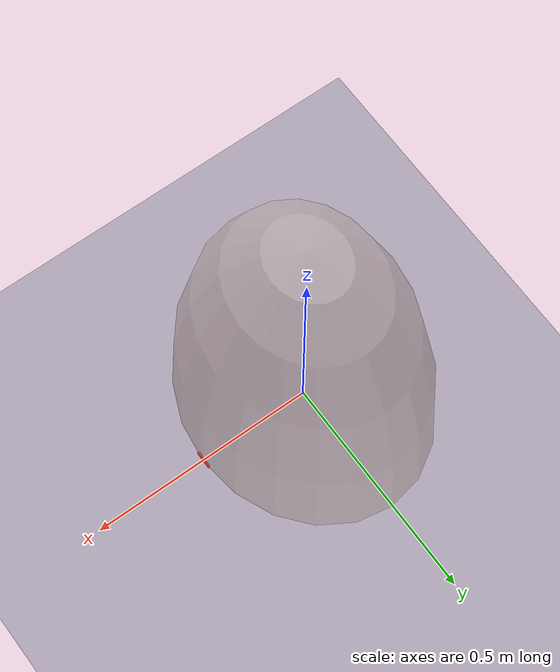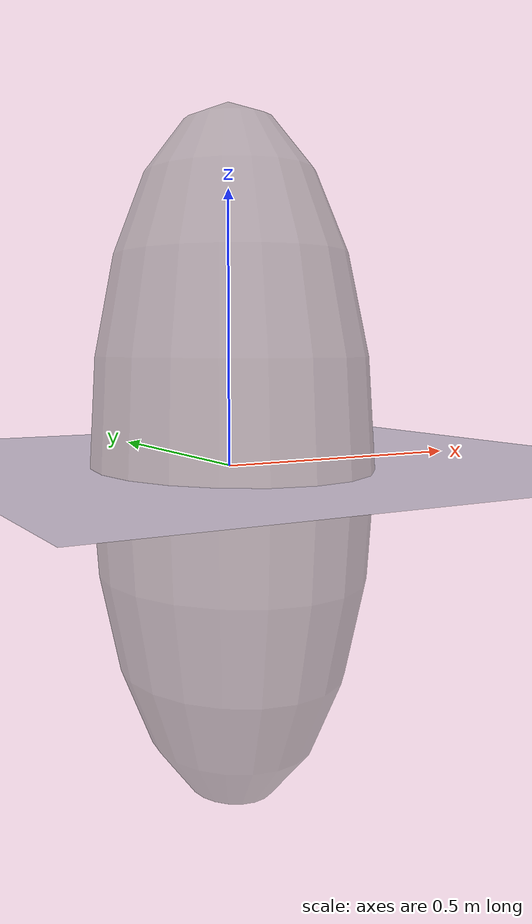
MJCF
<mujoco model="srb">
  <compiler angle="radian" coordinate="local" inertiafromgeom="false"/>
  <option timestep="0.01" gravity="0 0 -9.81" integrator="implicitfast"/>
  <size njmax="100" nconmax="100"/>

  <!-- Specify the light settings -->
  <asset>
      <texture type="skybox" builtin="flat" rgb1="0 0 0" rgb2="0 0 0" width="512" height="3072"/>
      <texture type="2d" name="groundplane" builtin="checker" mark="edge" rgb1="0.2 0.3 0.4" rgb2="0.1 0.2 0.3" markrgb="0.9 0.9 0.9" width="300" height="300"/>
      <material name="groundplane" texture="groundplane" texuniform="true" texrepeat="5 5" reflectance="0.2"/>
  </asset>

  <worldbody>

    <!-- Add light -->
    <light pos="1.0 0.5 0.0" dir="0 0 -1" directional="true"/>

    <!-- Add the Floor -->
    <geom name="floor" size="0 0 0.05" type="plane" material="groundplane"/>

    <!-- SRB base -->
    <body name="base" pos="0 0 0">

      <!-- Floating base -->
      <freejoint name="base_free"/>

      <!-- Explicit inertial properties in the BODY frame at the COM -->
      <inertial pos="0 0 0"
                mass="33.34"
                fullinertia="4.061963 3.616058 0.517193 0.000039 0.101482 -0.000628"/>

      <!-- Visual ellipsoid (roughly capture G1 shape, NOT the inertia, height is ~1.3 m)-->
      <geom name="base_geom"
            type="ellipsoid"
            size="0.25 0.30 0.65"
            rgba="0.5 0.5 0.5 0.5"
            contype="0" conaffinity="0"/>

      <!-- Orientation cylinders along body frame -->
      <!-- X-axis (red) -->
      <geom name="axis_x" type="cylinder"
            fromto="0 0 0 0.25 0 0"
            size="0.02"
            rgba="1 0 0 0.75"
            contype="0" conaffinity="0"/>

      <!-- Y-axis (green) -->
      <geom name="axis_y" type="cylinder"
            fromto="0 0 0 0 0.25 0"
            size="0.02"
            rgba="0 1 0 0.75"
            contype="0" conaffinity="0"/>

      <!-- Z-axis (blue) -->
      <geom name="axis_z" type="cylinder"
            fromto="0 0 0 0 0 0.25"
            size="0.02"
            rgba="0 0 1 0.75"
            contype="0" conaffinity="0"/>
    </body>
  </worldbody>

  <!-- default configuration (when you press "Load key" button) -->
  <keyframe>
      <key name="default" qpos="0 0 0.69 1 0 0 0" qvel="0 0 0 0 0 0"/>
  </keyframe>

</mujoco>
